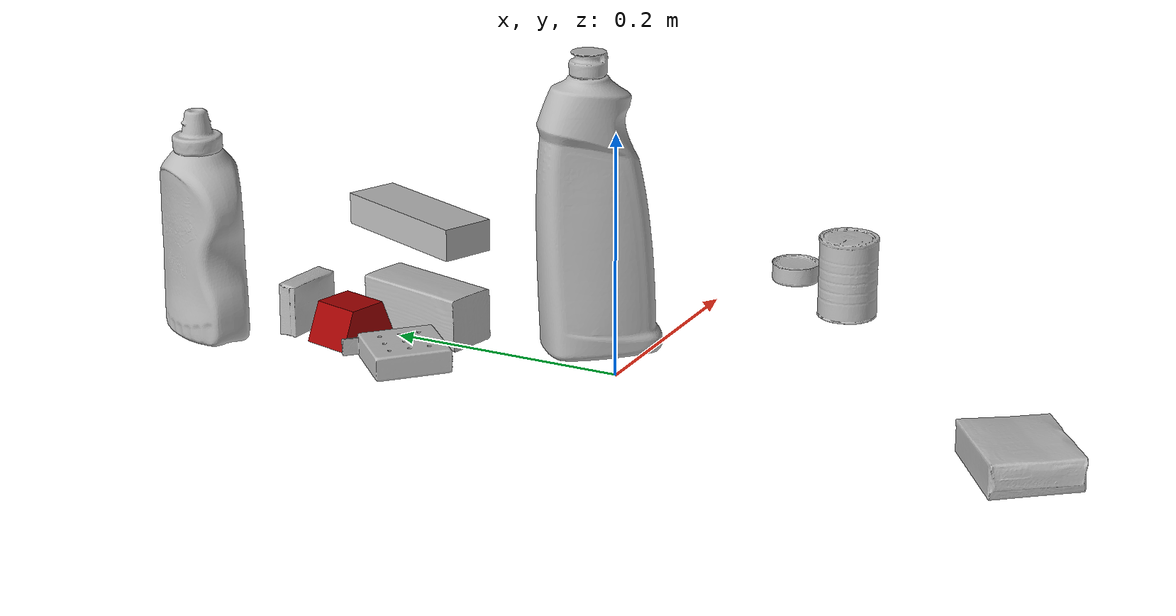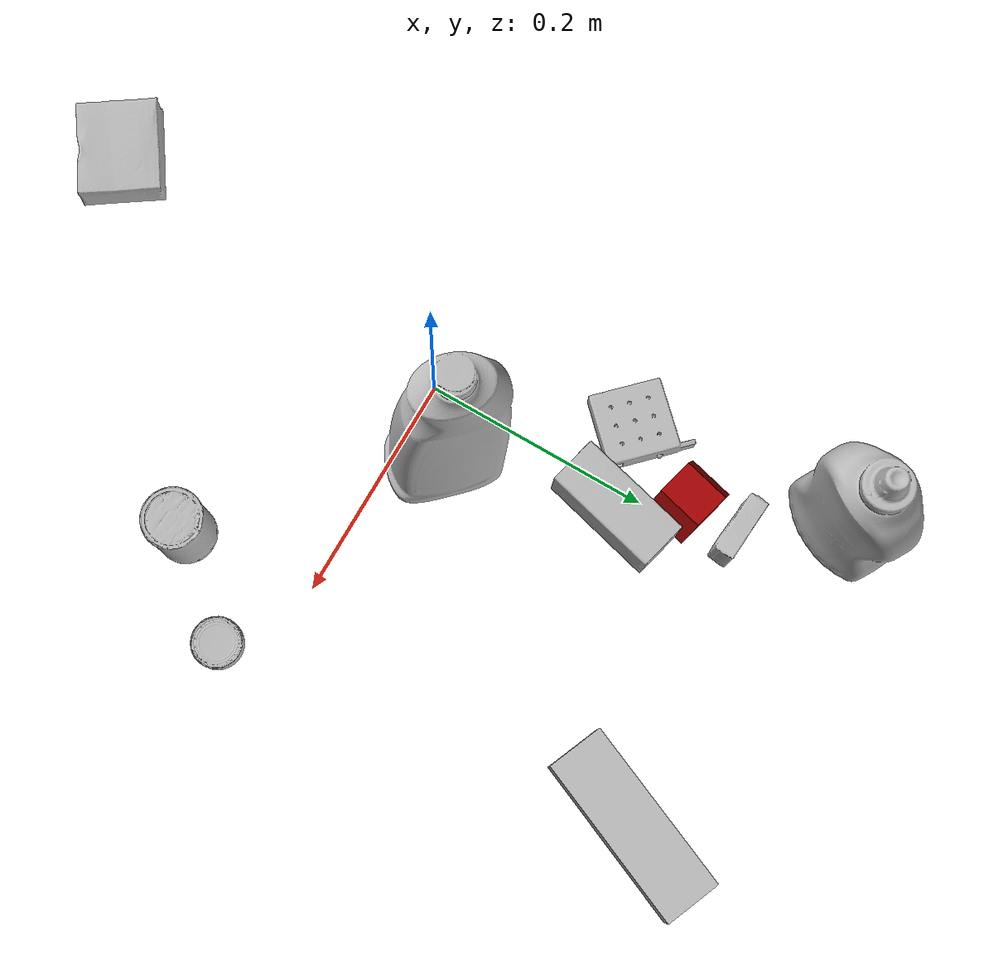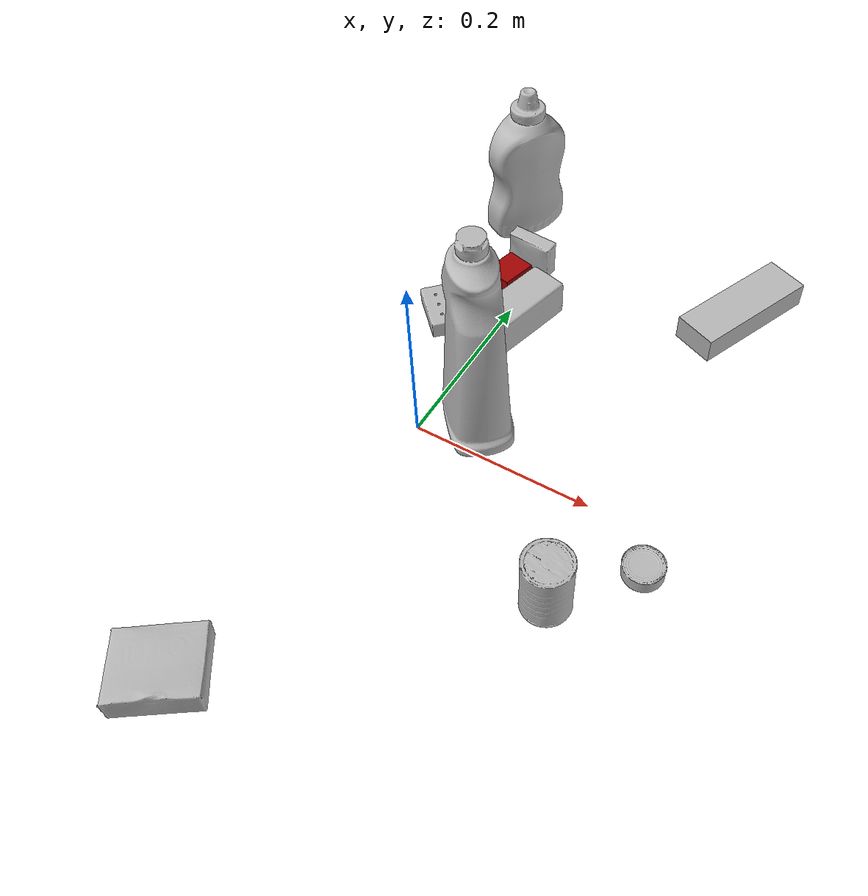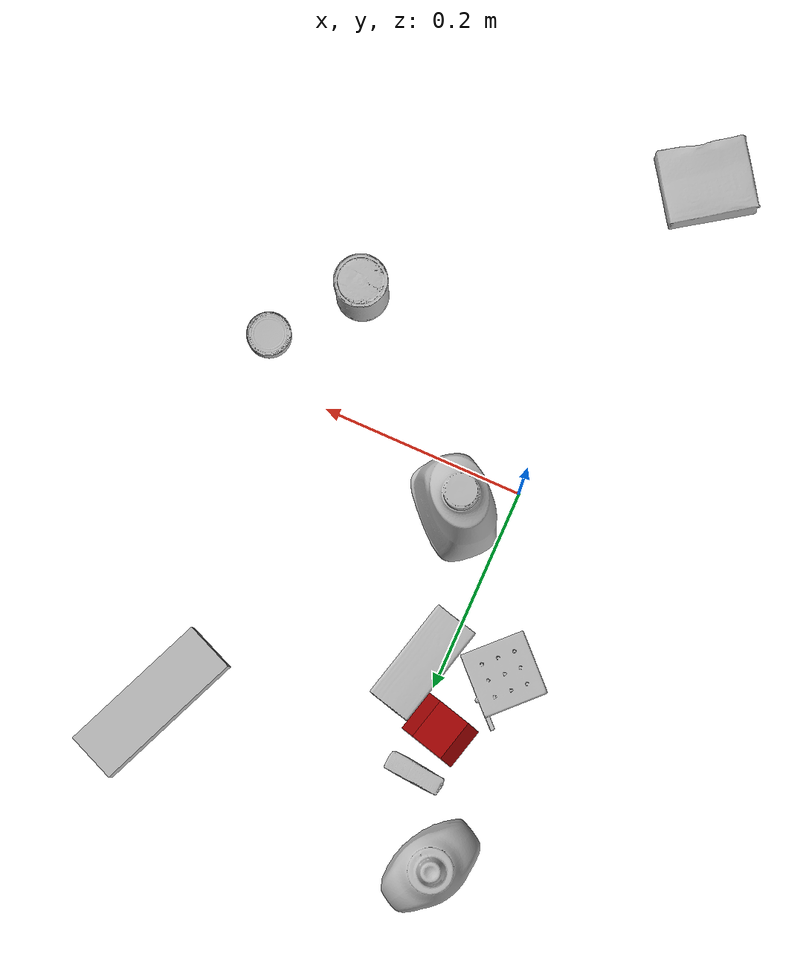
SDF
<sdf version="1.4">
  <world name="default">
    <light name="light1" type="point">
      <pose>0 0 1 0 0 0</pose>
      <diffuse>3 3 3 1</diffuse>
      <specular>3 3 3 1</specular>
    </light>
    <light name="light2" type="point">
      <pose>0 0.5 2 0 0 0</pose>
      <diffuse>1 1 1 1</diffuse>
      <specular>1 1 1 1</specular>
    </light>
    <light name="light3" type="point">
      <pose>0 0.5 2 0 0 0</pose>
      <diffuse>3 3 3 1</diffuse>
      <specular>3 3 3 1</specular>
    </light>
    <scene>
      <ambient>0.7 0.7 0.7</ambient>
    </scene>
    <model name="bottle1">
      <link name="link_bottle1">
        <collision name="default">
          <geometry>
            <mesh>
              <uri>model://mustard_bottle/collision_meshes/collision.obj</uri>
              <scale>1.0 1.0 1.0</scale>
            </mesh>
          </geometry>
          <surface>
            <friction>
              <ode>
                <mu>0.5</mu>
                <mu2>0.5</mu2>
              </ode>
            </friction>
          <contact>
        <ode>
            <max_vel>0</max_vel>
            <min_depth>0.0001</min_depth>
            <kp>1e8</kp>
        </ode>
    </contact></surface>
        </collision>
        <visual name="default">
          <geometry>
            <mesh>
              <uri>model://mustard_bottle/visual_meshes/visual.dae</uri>
              <scale>1.0 1.0 1.0</scale>
            </mesh>
          </geometry>
        </visual>
        <inertial>
          <mass>0.6762011647224426</mass>
          <pose>0.0005032454500906169 -0.00015647402324248105 -0.0174757931381464 0.0004182330054410876 0.0009465793907204819 0.02485376893997312</pose>
          <inertia>
            <ixx>0.001877718</ixx>
            <iyy>0.0016475386</iyy>
            <izz>0.0004948735</izz>
            <ixy>0</ixy>
            <ixz>0</ixz>
            <iyz>0</iyz>
          </inertia>
        </inertial>
      </link>
      <pose>-0.06256622076034546 0.3489617705345154 0.09615202248096466 1.5277353443184672e-05 1.658987986486729e-05 2.6253414388604623</pose>
    </model>
    <model name="bottle2">
      <link name="link_bottle2">
        <collision name="default">
          <geometry>
            <mesh>
              <uri>model://bleach_cleanser/collision_meshes/collision.obj</uri>
              <scale>1.0 1.0 1.0</scale>
            </mesh>
          </geometry>
          <surface>
            <friction>
              <ode>
                <mu>0.5</mu>
                <mu2>0.5</mu2>
              </ode>
            </friction>
          <contact>
        <ode>
            <max_vel>0</max_vel>
            <min_depth>0.0001</min_depth>
            <kp>1e8</kp>
        </ode>
    </contact></surface>
        </collision>
        <visual name="default">
          <geometry>
            <mesh>
              <uri>model://bleach_cleanser/visual_meshes/visual.dae</uri>
              <scale>1.0 1.0 1.0</scale>
            </mesh>
          </geometry>
        </visual>
        <inertial>
          <mass>1.3947629928588867</mass>
          <pose>0.00012193183647468686 0.0037838828284293413 -0.02442161738872528 -0.07381670616230765 0.000420115363335565 -0.006875068774372656</pose>
          <inertia>
            <ixx>0.0067885136</ixx>
            <iyy>0.006325901</iyy>
            <izz>0.0011606595</izz>
            <ixy>0</ixy>
            <ixz>0</ixz>
            <iyz>0</iyz>
          </inertia>
        </inertial>
      </link>
      <pose>0.04909728467464447 0.03946832939982414 0.12578414380550385 -0.00020028326263691796 1.6645236066416073e-05 0.7624692619527238</pose>
    </model>
    <model name="toy1">
      <link name="link_toy1">
        <collision name="default">
          <geometry>
            <mesh>
              <uri>model://nine_hole_peg_test/collision_meshes/collision.obj</uri>
              <scale>0.5 0.5 0.5</scale>
            </mesh>
          </geometry>
          <surface>
            <friction>
              <ode>
                <mu>0.5</mu>
                <mu2>0.5</mu2>
              </ode>
            </friction>
          <contact>
        <ode>
            <max_vel>0</max_vel>
            <min_depth>0.0001</min_depth>
            <kp>1e8</kp>
        </ode>
    </contact></surface>
        </collision>
        <visual name="default">
          <geometry>
            <mesh>
              <uri>model://nine_hole_peg_test/visual_meshes/visual.dae</uri>
              <scale>0.5 0.5 0.5</scale>
            </mesh>
          </geometry>
        </visual>
        <inertial>
          <mass>0.11556825786828995</mass>
          <pose>-0.0023086932487785816 -0.004823807626962662 1.3230343029135838e-05 -0.0014666797633517714 0.0007194158879745651 -0.6342419016734399</pose>
          <inertia>
            <ixx>4.5177487e-05</ixx>
            <iyy>4.2181746e-05</iyy>
            <izz>7.9164296e-05</izz>
            <ixy>0</ixy>
            <ixz>0</ixz>
            <iyz>0</iyz>
          </inertia>
        </inertial>
      </link>
      <pose>-0.05713481083512306 0.16810688376426697 0.010385500267148018 -1.3734274500999404e-08 7.0955391194903925e-09 0.7954171570433275</pose>
    </model>
    <model name="toy2">
      <link name="link_toy2">
        <collision name="default">
          <geometry>
            <mesh>
              <uri>model://prism/collision_meshes/collision.obj</uri>
              <scale>0.5 0.5 0.5</scale>
            </mesh>
          </geometry>
          <surface>
            <friction>
              <ode>
                <mu>0.5</mu>
                <mu2>0.5</mu2>
              </ode>
            </friction>
          <contact>
        <ode>
            <max_vel>0</max_vel>
            <min_depth>0.0001</min_depth>
            <kp>1e8</kp>
        </ode>
    </contact></surface>
        </collision>
        <visual name="default">
          <geometry>
            <mesh>
              <uri>model://prism/visual_meshes/visual.dae</uri>
              <scale>0.5 0.5 0.5</scale>
            </mesh>
          </geometry>
        </visual>
        <inertial>
          <mass>0.033433690667152405</mass>
          <pose>-4.9267986469203606e-05 -2.480786349678965e-07 -0.001693455153144896 0.0 0.00655918030046738 0.0</pose>
          <inertia>
            <ixx>7.543374e-06</ixx>
            <iyy>9.116264e-06</iyy>
            <izz>1.1166334e-05</izz>
            <ixy>0</ixy>
            <ixz>0</ixz>
            <iyz>0</iyz>
          </inertia>
        </inertial>
      </link>
      <pose>-0.021768126636743546 0.2339601367712021 0.016084998846054077 -1.6283286710350628e-08 -1.8055249524432126e-08 2.8859735631592978</pose>
    </model>
    <model name="can1">
      <link name="link_can1">
        <collision name="default">
          <geometry>
            <mesh>
              <uri>model://master_chef_can/collision_meshes/collision.obj</uri>
              <scale>0.5 0.5 0.5</scale>
            </mesh>
          </geometry>
          <surface>
            <friction>
              <ode>
                <mu>0.5</mu>
                <mu2>0.5</mu2>
              </ode>
            </friction>
          <contact>
        <ode>
            <max_vel>0</max_vel>
            <min_depth>0.0001</min_depth>
            <kp>1e8</kp>
        </ode>
    </contact></surface>
        </collision>
        <visual name="default">
          <geometry>
            <mesh>
              <uri>model://master_chef_can/visual_meshes/visual.dae</uri>
              <scale>0.5 0.5 0.5</scale>
            </mesh>
          </geometry>
        </visual>
        <inertial>
          <mass>0.10766725987195969</mass>
          <pose>-4.661964703700505e-05 1.3926853625889635e-07 -5.079878610558808e-05 -0.0017995160150511523 0.000647916474058074 -0.6102670332280266</pose>
          <inertia>
            <ixx>6.319339e-05</ixx>
            <iyy>6.2728286e-05</iyy>
            <izz>3.491918e-05</izz>
            <ixy>0</ixy>
            <ixz>0</ixz>
            <iyz>0</iyz>
          </inertia>
        </inertial>
      </link>
      <pose>0.21362917125225067 -0.11500371992588043 0.03530198335647583 -1.4925938676335936e-06 -7.124322002414272e-07 -2.7369991208973934</pose>
    </model>
    <model name="can2">
      <link name="link_can2">
        <collision name="default">
          <geometry>
            <mesh>
              <uri>model://tuna_fish_can/collision_meshes/collision.obj</uri>
              <scale>0.5 0.5 0.5</scale>
            </mesh>
          </geometry>
          <surface>
            <friction>
              <ode>
                <mu>0.5</mu>
                <mu2>0.5</mu2>
              </ode>
            </friction>
          <contact>
        <ode>
            <max_vel>0</max_vel>
            <min_depth>0.0001</min_depth>
            <kp>1e8</kp>
        </ode>
    </contact></surface>
        </collision>
        <visual name="default">
          <geometry>
            <mesh>
              <uri>model://tuna_fish_can/visual_meshes/visual.dae</uri>
              <scale>0.5 0.5 0.5</scale>
            </mesh>
          </geometry>
        </visual>
        <inertial>
          <mass>0.02740846574306488</mass>
          <pose>-2.0361561837489717e-05 -7.256384378706571e-06 -0.0005269024986773729 -0.0017944791545750336 0.000171617609773777 0.24054039995463303</pose>
          <inertia>
            <ixx>3.7056664e-06</ixx>
            <iyy>3.6902204e-06</iyy>
            <izz>6.3409243e-06</izz>
            <ixy>0</ixy>
            <ixz>0</ixz>
            <iyz>0</iyz>
          </inertia>
        </inertial>
      </link>
      <pose>0.2783706486225128 -0.04224831238389015 0.008520000614225864 1.9859225106522316e-08 -2.675132527632505e-08 -1.8319919283081099</pose>
    </model>
    <model name="box1">
      <link name="link_box1">
        <collision name="default">
          <geometry>
            <mesh>
              <uri>model://gelatin_box/collision_meshes/collision.obj</uri>
              <scale>1.0 1.0 1.0</scale>
            </mesh>
          </geometry>
          <surface>
            <friction>
              <ode>
                <mu>0.5</mu>
                <mu2>0.5</mu2>
              </ode>
            </friction>
          <contact>
        <ode>
            <max_vel>0</max_vel>
            <min_depth>0.0001</min_depth>
            <kp>1e8</kp>
        </ode>
    </contact></surface>
        </collision>
        <visual name="default">
          <geometry>
            <mesh>
              <uri>model://gelatin_box/visual_meshes/visual.dae</uri>
              <scale>1.0 1.0 1.0</scale>
            </mesh>
          </geometry>
        </visual>
        <inertial>
          <mass>0.1693437397480011</mass>
          <pose>0.0004319618456065655 0.00011156872642459348 -0.00036403213744051754 -0.0010503721973280913 -0.004755817758053359 0.01644055760876268</pose>
          <inertia>
            <ixx>0.00011954286</ixx>
            <iyy>8.538885e-05</iyy>
            <izz>0.0001819709</izz>
            <ixy>0</ixy>
            <ixz>0</ixz>
            <iyz>0</iyz>
          </inertia>
        </inertial>
      </link>
      <pose>-0.04399474337697029 -0.345831960439682 0.015168316662311554 0.005597340843014198 -0.007304449421169025 -0.975628302817132</pose>
    </model>
    <model name="box2">
      <link name="link_box2">
        <collision name="default">
          <geometry>
            <mesh>
              <uri>model://pudding_box/collision_meshes/collision.obj</uri>
              <scale>0.5 0.5 0.5</scale>
            </mesh>
          </geometry>
          <surface>
            <friction>
              <ode>
                <mu>0.5</mu>
                <mu2>0.5</mu2>
              </ode>
            </friction>
          <contact>
        <ode>
            <max_vel>0</max_vel>
            <min_depth>0.0001</min_depth>
            <kp>1e8</kp>
        </ode>
    </contact></surface>
        </collision>
        <visual name="default">
          <geometry>
            <mesh>
              <uri>model://pudding_box/visual_meshes/visual.dae</uri>
              <scale>0.5 0.5 0.5</scale>
            </mesh>
          </geometry>
        </visual>
        <inertial>
          <mass>0.04695427790284157</mass>
          <pose>0.00024474109522998333 0.00040339428232982755 -0.0002594413817860186 0.005213102262859105 -0.0066037982576109796 0.020079825159299278</pose>
          <inertia>
            <ixx>1.3269848e-05</ixx>
            <iyy>8.9280475e-06</iyy>
            <izz>1.95964e-05</izz>
            <ixy>0</ixy>
            <ixz>0</ixz>
            <iyz>0</iyz>
          </inertia>
        </inertial>
      </link>
      <pose>-0.016018612310290337 0.2804703414440155 0.022288184612989426 -0.020287600828195168 -1.5480764594406495 -1.6407431164595574</pose>
    </model>
    <model name="box3">
      <link name="link_box3">
        <collision name="default">
          <geometry>
            <mesh>
              <uri>model://wood_block/collision_meshes/collision.obj</uri>
              <scale>0.5 0.5 0.5</scale>
            </mesh>
          </geometry>
          <surface>
            <friction>
              <ode>
                <mu>0.5</mu>
                <mu2>0.5</mu2>
              </ode>
            </friction>
          <contact>
        <ode>
            <max_vel>0</max_vel>
            <min_depth>0.0001</min_depth>
            <kp>1e8</kp>
        </ode>
    </contact></surface>
        </collision>
        <visual name="default">
          <geometry>
            <mesh>
              <uri>model://wood_block/visual_meshes/visual.dae</uri>
              <scale>0.5 0.5 0.5</scale>
            </mesh>
          </geometry>
        </visual>
        <inertial>
          <mass>0.2591375410556793</mass>
          <pose>-2.9066577553749084e-06 -0.00028540476341731846 0.00013204291462898254 -0.05221026556657302 -0.005192695801982805 -0.006861378038707315</pose>
          <inertia>
            <ixx>8.669131e-05</ixx>
            <iyy>0.00027385785</iyy>
            <izz>0.00027283354</izz>
            <ixy>0</ixy>
            <ixz>0</ixz>
            <iyz>0</iyz>
          </inertia>
        </inertial>
      </link>
      <pose>0.018084034323692322 0.18425017595291138 0.022629259154200554 -0.005208610602344883 0.005718760907565113 1.323339916391338</pose>
    </model>
    <model name="box4">
      <link name="link_box4">
        <collision name="default">
          <geometry>
            <mesh>
              <uri>model://jenga/collision_meshes/collision.obj</uri>
              <scale>1.0 1.0 1.0</scale>
            </mesh>
          </geometry>
          <surface>
            <friction>
              <ode>
                <mu>0.5</mu>
                <mu2>0.5</mu2>
              </ode>
            </friction>
          <contact>
        <ode>
            <max_vel>0</max_vel>
            <min_depth>0.0001</min_depth>
            <kp>1e8</kp>
        </ode>
    </contact></surface>
        </collision>
        <visual name="default">
          <geometry>
            <mesh>
              <uri>model://jenga/visual_meshes/visual.dae</uri>
              <scale>1.0 1.0 1.0</scale>
            </mesh>
          </geometry>
        </visual>
        <inertial>
          <mass>0.14610815048217773</mass>
          <pose>-2.502855807051674e-07 -0.00010250010382151231 -4.092339804628864e-05 0.0 -7.342155186052628e-07 0.0</pose>
          <inertia>
            <ixx>4.043167e-05</ixx>
            <iyy>0.0002739639</iyy>
            <izz>0.00029247976</izz>
            <ixy>0</ixy>
            <ixz>0</ixz>
            <iyz>0</iyz>
          </inertia>
        </inertial>
      </link>
      <pose>0.2345765233039856 0.31923726201057434 0.014999995939433575 1.0735872573108696e-08 -2.6822359717031877e-09 -1.9706731197804046</pose>
    </model>
  <physics type="ode">
      <max_contacts>50</max_contacts>
      <ode>
        <solver>
          <type>quick</type>
          <iters>75</iters>
        </solver>
        <constraints>
          <contact_max_correcting_vel>0</contact_max_correcting_vel>
          <contact_surface_layer>0</contact_surface_layer>
        </constraints>
      </ode>
    </physics></world>
</sdf>
